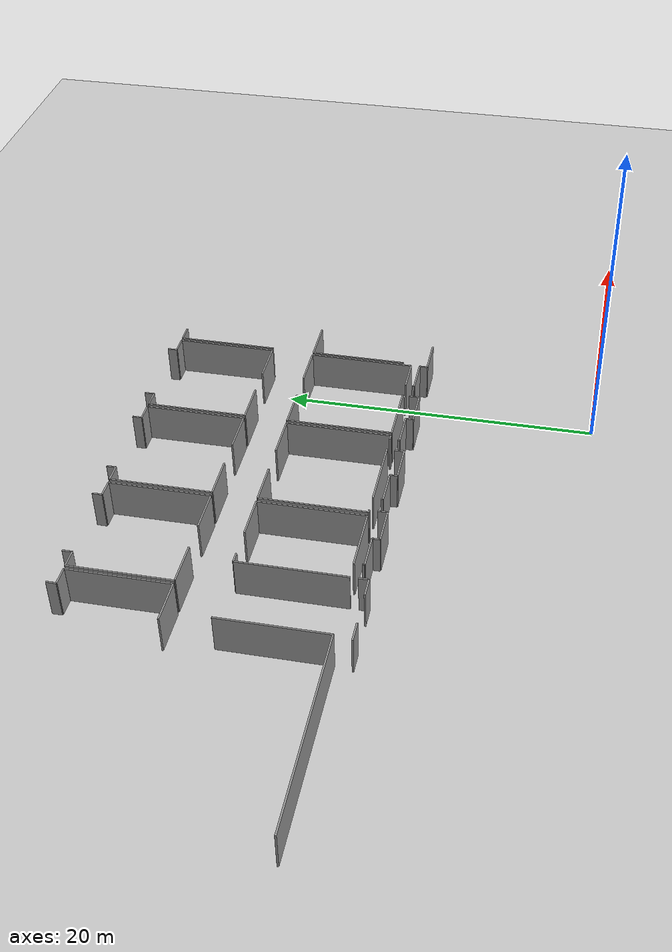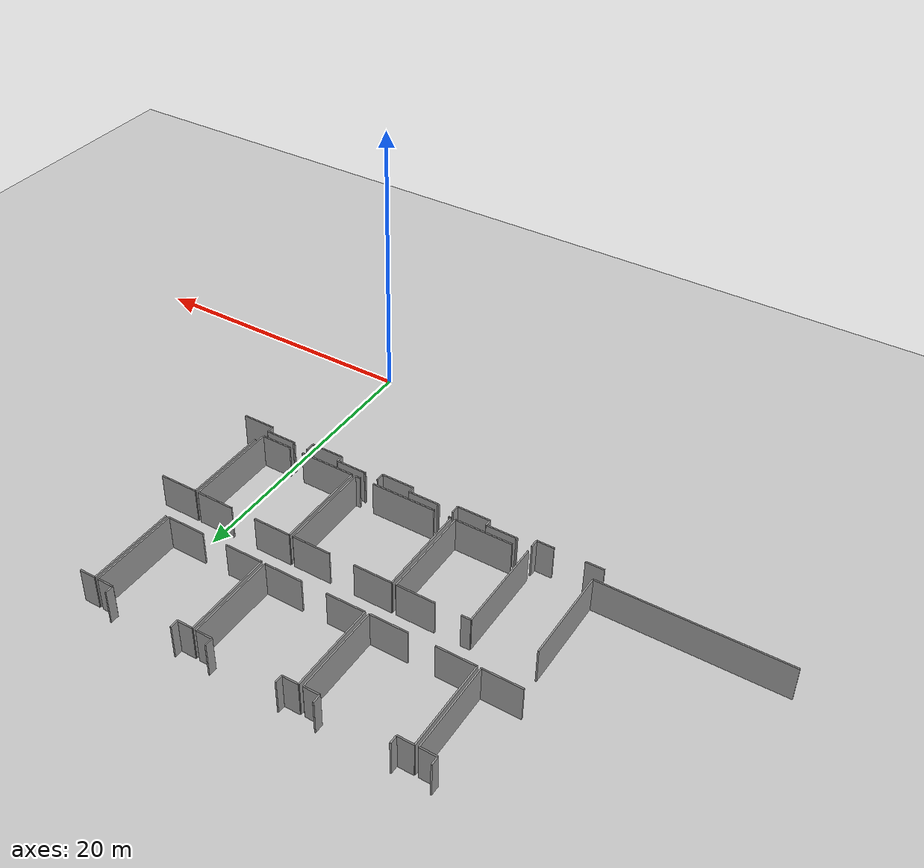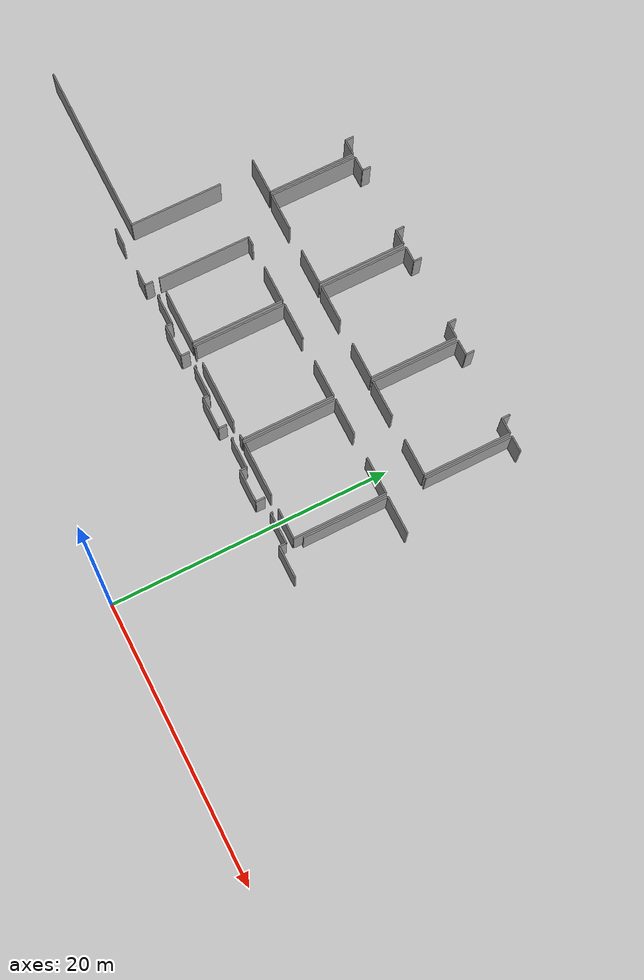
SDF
<sdf version="1.6">
 <world name="default">
  <model name="ground_plane">
   <static>1</static>
   <link name="link">
    <collision name="collision">
     <geometry><plane><normal>0 0 1</normal><size>100 100</size></plane></geometry>
     <surface><friction><ode><mu>100</mu><mu2>50</mu2></ode></friction></surface>
    </collision>
    <visual name="visual">
     <cast_shadows>0</cast_shadows>
     <geometry><plane><normal>0 0 1</normal><size>100 100</size></plane></geometry>
     <material>
      <script><uri>file://media/materials/scripts/gazebo.material</uri><name>Gazebo/Grey</name></script>
     </material>
    </visual>
   </link>
  </model>
  <model name="50045228">
   <static>1</static>
   <link name="Wall_9">
    <collision name="Wall_9_Collision">
     <geometry><box><size>6.64362056389 0.1 2.5</size></box></geometry>
     <pose>3.32181028194 0 1.25 0 0 0</pose>
    </collision>
    <visual name="Wall_9_Visual">
     <pose>3.32181028194 0 1.25 0 0 0</pose>
     <geometry><box><size>6.64362056389 0.1 2.5</size></box></geometry>
     <material>
      <script><uri>file://media/materials/scripts/gazebo.material</uri><name>Gazebo/Grey</name></script>
      <ambient>1 1 1 1</ambient>
     </material>
    </visual>
    <pose>24.4277694967 -9.68443753766 0 0 0 -1.57079632679</pose>
   </link>
   <link name="Wall_10">
    <collision name="Wall_10_Collision">
     <geometry><box><size>12.6084344882 0.1 2.5</size></box></geometry>
     <pose>6.30421724409 0 1.25 0 0 0</pose>
    </collision>
    <visual name="Wall_10_Visual">
     <pose>6.30421724409 0 1.25 0 0 0</pose>
     <geometry><box><size>12.6084344882 0.1 2.5</size></box></geometry>
     <material>
      <script><uri>file://media/materials/scripts/gazebo.material</uri><name>Gazebo/Grey</name></script>
      <ambient>1 1 1 1</ambient>
     </material>
    </visual>
    <pose>24.4277694967 -16.3280581016 0 0 0 -3.13993251164</pose>
   </link>
   <link name="Wall_14">
    <collision name="Wall_14_Collision">
     <geometry><box><size>0.6105737211 0.1 2.5</size></box></geometry>
     <pose>0.30528686055 0 1.25 0 0 0</pose>
    </collision>
    <visual name="Wall_14_Visual">
     <pose>0.30528686055 0 1.25 0 0 0</pose>
     <geometry><box><size>0.6105737211 0.1 2.5</size></box></geometry>
     <material>
      <script><uri>file://media/materials/scripts/gazebo.material</uri><name>Gazebo/Grey</name></script>
      <ambient>1 1 1 1</ambient>
     </material>
    </visual>
    <pose>25.3082997685 -0.00583552694174 0 0 0 -1.57079632679</pose>
   </link>
   <link name="Wall_15">
    <collision name="Wall_15_Collision">
     <geometry><box><size>1.14591988836 0.1 2.5</size></box></geometry>
     <pose>0.572959944182 0 1.25 0 0 0</pose>
    </collision>
    <visual name="Wall_15_Visual">
     <pose>0.572959944182 0 1.25 0 0 0</pose>
     <geometry><box><size>1.14591988836 0.1 2.5</size></box></geometry>
     <material>
      <script><uri>file://media/materials/scripts/gazebo.material</uri><name>Gazebo/Grey</name></script>
      <ambient>1 1 1 1</ambient>
     </material>
    </visual>
    <pose>25.3082997685 -0.616409248042 0 0 0 0.0</pose>
   </link>
   <link name="Wall_16">
    <collision name="Wall_16_Collision">
     <geometry><box><size>6.31162982462 0.1 2.5</size></box></geometry>
     <pose>3.15581491231 0 1.25 0 0 0</pose>
    </collision>
    <visual name="Wall_16_Visual">
     <pose>3.15581491231 0 1.25 0 0 0</pose>
     <geometry><box><size>6.31162982462 0.1 2.5</size></box></geometry>
     <material>
      <script><uri>file://media/materials/scripts/gazebo.material</uri><name>Gazebo/Grey</name></script>
      <ambient>1 1 1 1</ambient>
     </material>
    </visual>
    <pose>26.4542196568 -0.616409248042 0 0 0 -1.57079632679</pose>
   </link>
   <link name="Wall_17">
    <collision name="Wall_17_Collision">
     <geometry><box><size>2.68142462973 0.1 2.5</size></box></geometry>
     <pose>1.34071231486 0 1.25 0 0 0</pose>
    </collision>
    <visual name="Wall_17_Visual">
     <pose>1.34071231486 0 1.25 0 0 0</pose>
     <geometry><box><size>2.68142462973 0.1 2.5</size></box></geometry>
     <material>
      <script><uri>file://media/materials/scripts/gazebo.material</uri><name>Gazebo/Grey</name></script>
      <ambient>1 1 1 1</ambient>
     </material>
    </visual>
    <pose>26.4542196568 -6.92803907266 0 0 0 3.14159265359</pose>
   </link>
   <link name="Wall_27">
    <collision name="Wall_27_Collision">
     <geometry><box><size>6.32951698329 0.1 2.5</size></box></geometry>
     <pose>3.16475849164 0 1.25 0 0 0</pose>
    </collision>
    <visual name="Wall_27_Visual">
     <pose>3.16475849164 0 1.25 0 0 0</pose>
     <geometry><box><size>6.32951698329 0.1 2.5</size></box></geometry>
     <material>
      <script><uri>file://media/materials/scripts/gazebo.material</uri><name>Gazebo/Grey</name></script>
      <ambient>1 1 1 1</ambient>
     </material>
    </visual>
    <pose>26.7048935968 -6.93146427325 0 0 0 1.57079632679</pose>
   </link>
   <link name="Wall_28">
    <collision name="Wall_28_Collision">
     <geometry><box><size>1.12029431353 0.1 2.5</size></box></geometry>
     <pose>0.560147156766 0 1.25 0 0 0</pose>
    </collision>
    <visual name="Wall_28_Visual">
     <pose>0.560147156766 0 1.25 0 0 0</pose>
     <geometry><box><size>1.12029431353 0.1 2.5</size></box></geometry>
     <material>
      <script><uri>file://media/materials/scripts/gazebo.material</uri><name>Gazebo/Grey</name></script>
      <ambient>1 1 1 1</ambient>
     </material>
    </visual>
    <pose>26.7048935968 -0.601947289969 0 0 0 0.0</pose>
   </link>
   <link name="Wall_29">
    <collision name="Wall_29_Collision">
     <geometry><box><size>0.601947289969 0.1 2.5</size></box></geometry>
     <pose>0.300973644984 0 1.25 0 0 0</pose>
    </collision>
    <visual name="Wall_29_Visual">
     <pose>0.300973644984 0 1.25 0 0 0</pose>
     <geometry><box><size>0.601947289969 0.1 2.5</size></box></geometry>
     <material>
      <script><uri>file://media/materials/scripts/gazebo.material</uri><name>Gazebo/Grey</name></script>
      <ambient>1 1 1 1</ambient>
     </material>
    </visual>
    <pose>27.8251879103 -0.601947289969 0 0 0 1.57079632679</pose>
   </link>
   <link name="Wall_30">
    <collision name="Wall_30_Collision">
     <geometry><box><size>0.615521233072 0.1 2.5</size></box></geometry>
     <pose>0.307760616536 0 1.25 0 0 0</pose>
    </collision>
    <visual name="Wall_30_Visual">
     <pose>0.307760616536 0 1.25 0 0 0</pose>
     <geometry><box><size>0.615521233072 0.1 2.5</size></box></geometry>
     <material>
      <script><uri>file://media/materials/scripts/gazebo.material</uri><name>Gazebo/Grey</name></script>
      <ambient>1 1 1 1</ambient>
     </material>
    </visual>
    <pose>32.7468205893 -0.0 0 0 0 -1.57079632679</pose>
   </link>
   <link name="Wall_31">
    <collision name="Wall_31_Collision">
     <geometry><box><size>1.11141416384 0.1 2.5</size></box></geometry>
     <pose>0.555707081919 0 1.25 0 0 0</pose>
    </collision>
    <visual name="Wall_31_Visual">
     <pose>0.555707081919 0 1.25 0 0 0</pose>
     <geometry><box><size>1.11141416384 0.1 2.5</size></box></geometry>
     <material>
      <script><uri>file://media/materials/scripts/gazebo.material</uri><name>Gazebo/Grey</name></script>
      <ambient>1 1 1 1</ambient>
     </material>
    </visual>
    <pose>32.7468205893 -0.615521233072 0 0 0 0.0</pose>
   </link>
   <link name="Wall_32">
    <collision name="Wall_32_Collision">
     <geometry><box><size>6.31886080365 0.1 2.5</size></box></geometry>
     <pose>3.15943040183 0 1.25 0 0 0</pose>
    </collision>
    <visual name="Wall_32_Visual">
     <pose>3.15943040183 0 1.25 0 0 0</pose>
     <geometry><box><size>6.31886080365 0.1 2.5</size></box></geometry>
     <material>
      <script><uri>file://media/materials/scripts/gazebo.material</uri><name>Gazebo/Grey</name></script>
      <ambient>1 1 1 1</ambient>
     </material>
    </visual>
    <pose>33.8582347531 -0.615521233072 0 0 0 -1.57079632679</pose>
   </link>
   <link name="Wall_33">
    <collision name="Wall_33_Collision">
     <geometry><box><size>2.65567219562 0.1 2.5</size></box></geometry>
     <pose>1.32783609781 0 1.25 0 0 0</pose>
    </collision>
    <visual name="Wall_33_Visual">
     <pose>1.32783609781 0 1.25 0 0 0</pose>
     <geometry><box><size>2.65567219562 0.1 2.5</size></box></geometry>
     <material>
      <script><uri>file://media/materials/scripts/gazebo.material</uri><name>Gazebo/Grey</name></script>
      <ambient>1 1 1 1</ambient>
     </material>
    </visual>
    <pose>33.8582347531 -6.93438203673 0 0 0 3.14159265359</pose>
   </link>
   <link name="Wall_34">
    <collision name="Wall_34_Collision">
     <geometry><box><size>2.71085755323 0.1 2.5</size></box></geometry>
     <pose>1.35542877662 0 1.25 0 0 0</pose>
    </collision>
    <visual name="Wall_34_Visual">
     <pose>1.35542877662 0 1.25 0 0 0</pose>
     <geometry><box><size>2.71085755323 0.1 2.5</size></box></geometry>
     <material>
      <script><uri>file://media/materials/scripts/gazebo.material</uri><name>Gazebo/Grey</name></script>
      <ambient>1 1 1 1</ambient>
     </material>
    </visual>
    <pose>29.4157495798 -6.93438203673 0 0 0 3.14051632849</pose>
   </link>
   <link name="Wall_35">
    <collision name="Wall_35_Collision">
     <geometry><box><size>6.3477847198 0.1 2.5</size></box></geometry>
     <pose>3.1738923599 0 1.25 0 0 0</pose>
    </collision>
    <visual name="Wall_35_Visual">
     <pose>3.1738923599 0 1.25 0 0 0</pose>
     <geometry><box><size>6.3477847198 0.1 2.5</size></box></geometry>
     <material>
      <script><uri>file://media/materials/scripts/gazebo.material</uri><name>Gazebo/Grey</name></script>
      <ambient>1 1 1 1</ambient>
     </material>
    </visual>
    <pose>34.1451904475 -6.93146427325 0 0 0 1.57079632679</pose>
   </link>
   <link name="Wall_36">
    <collision name="Wall_36_Collision">
     <geometry><box><size>1.12892074466 0.1 2.5</size></box></geometry>
     <pose>0.564460372332 0 1.25 0 0 0</pose>
    </collision>
    <visual name="Wall_36_Visual">
     <pose>0.564460372332 0 1.25 0 0 0</pose>
     <geometry><box><size>1.12892074466 0.1 2.5</size></box></geometry>
     <material>
      <script><uri>file://media/materials/scripts/gazebo.material</uri><name>Gazebo/Grey</name></script>
      <ambient>1 1 1 1</ambient>
     </material>
    </visual>
    <pose>34.1451904475 -0.583679553455 0 0 0 0.0</pose>
   </link>
   <link name="Wall_37">
    <collision name="Wall_37_Collision">
     <geometry><box><size>0.573530810948 0.1 2.5</size></box></geometry>
     <pose>0.286765405474 0 1.25 0 0 0</pose>
    </collision>
    <visual name="Wall_37_Visual">
     <pose>0.286765405474 0 1.25 0 0 0</pose>
     <geometry><box><size>0.573530810948 0.1 2.5</size></box></geometry>
     <material>
      <script><uri>file://media/materials/scripts/gazebo.material</uri><name>Gazebo/Grey</name></script>
      <ambient>1 1 1 1</ambient>
     </material>
    </visual>
    <pose>35.2741111922 -0.583679553455 0 0 0 1.57079632679</pose>
   </link>
   <link name="Wall_38">
    <collision name="Wall_38_Collision">
     <geometry><box><size>0.585455583394 0.1 2.5</size></box></geometry>
     <pose>0.292727791697 0 1.25 0 0 0</pose>
    </collision>
    <visual name="Wall_38_Visual">
     <pose>0.292727791697 0 1.25 0 0 0</pose>
     <geometry><box><size>0.585455583394 0.1 2.5</size></box></geometry>
     <material>
      <script><uri>file://media/materials/scripts/gazebo.material</uri><name>Gazebo/Grey</name></script>
      <ambient>1 1 1 1</ambient>
     </material>
    </visual>
    <pose>40.1713868891 -0.0101487425074 0 0 0 -1.57079632679</pose>
   </link>
   <link name="Wall_39">
    <collision name="Wall_39_Collision">
     <geometry><box><size>1.14794963687 0.1 2.5</size></box></geometry>
     <pose>0.573974818433 0 1.25 0 0 0</pose>
    </collision>
    <visual name="Wall_39_Visual">
     <pose>0.573974818433 0 1.25 0 0 0</pose>
     <geometry><box><size>1.14794963687 0.1 2.5</size></box></geometry>
     <material>
      <script><uri>file://media/materials/scripts/gazebo.material</uri><name>Gazebo/Grey</name></script>
      <ambient>1 1 1 1</ambient>
     </material>
    </visual>
    <pose>40.1713868891 -0.595604325901 0 0 0 0.0</pose>
   </link>
   <link name="Wall_40">
    <collision name="Wall_40_Collision">
     <geometry><box><size>6.3192413815 0.1 2.5</size></box></geometry>
     <pose>3.15962069075 0 1.25 0 0 0</pose>
    </collision>
    <visual name="Wall_40_Visual">
     <pose>3.15962069075 0 1.25 0 0 0</pose>
     <geometry><box><size>6.3192413815 0.1 2.5</size></box></geometry>
     <material>
      <script><uri>file://media/materials/scripts/gazebo.material</uri><name>Gazebo/Grey</name></script>
      <ambient>1 1 1 1</ambient>
     </material>
    </visual>
    <pose>41.319336526 -0.595604325901 0 0 0 -1.57079632679</pose>
   </link>
   <link name="Wall_41">
    <collision name="Wall_41_Collision">
     <geometry><box><size>2.69487171355 0.1 2.5</size></box></geometry>
     <pose>1.34743585678 0 1.25 0 0 0</pose>
    </collision>
    <visual name="Wall_41_Visual">
     <pose>1.34743585678 0 1.25 0 0 0</pose>
     <geometry><box><size>2.69487171355 0.1 2.5</size></box></geometry>
     <material>
      <script><uri>file://media/materials/scripts/gazebo.material</uri><name>Gazebo/Grey</name></script>
      <ambient>1 1 1 1</ambient>
     </material>
    </visual>
    <pose>41.319336526 -6.9148457074 0 0 0 3.14159265359</pose>
   </link>
   <link name="Wall_42">
    <collision name="Wall_42_Collision">
     <geometry><box><size>2.70266122368 0.1 2.5</size></box></geometry>
     <pose>1.35133061184 0 1.25 0 0 0</pose>
    </collision>
    <visual name="Wall_42_Visual">
     <pose>1.35133061184 0 1.25 0 0 0</pose>
     <geometry><box><size>2.70266122368 0.1 2.5</size></box></geometry>
     <material>
      <script><uri>file://media/materials/scripts/gazebo.material</uri><name>Gazebo/Grey</name></script>
      <ambient>1 1 1 1</ambient>
     </material>
    </visual>
    <pose>36.8478005772 -6.9148457074 0 0 0 -3.1354436511</pose>
   </link>
   <link name="Wall_43">
    <collision name="Wall_43_Collision">
     <geometry><box><size>6.33091243538 0.1 2.5</size></box></geometry>
     <pose>3.16545621769 0 1.25 0 0 0</pose>
    </collision>
    <visual name="Wall_43_Visual">
     <pose>3.16545621769 0 1.25 0 0 0</pose>
     <geometry><box><size>6.33091243538 0.1 2.5</size></box></geometry>
     <material>
      <script><uri>file://media/materials/scripts/gazebo.material</uri><name>Gazebo/Grey</name></script>
      <ambient>1 1 1 1</ambient>
     </material>
    </visual>
    <pose>41.5856141575 -6.93146427325 0 0 0 1.57079632679</pose>
   </link>
   <link name="Wall_44">
    <collision name="Wall_44_Collision">
     <geometry><box><size>1.0926389902 0.1 2.5</size></box></geometry>
     <pose>0.5463194951 0 1.25 0 0 0</pose>
    </collision>
    <visual name="Wall_44_Visual">
     <pose>0.5463194951 0 1.25 0 0 0</pose>
     <geometry><box><size>1.0926389902 0.1 2.5</size></box></geometry>
     <material>
      <script><uri>file://media/materials/scripts/gazebo.material</uri><name>Gazebo/Grey</name></script>
      <ambient>1 1 1 1</ambient>
     </material>
    </visual>
    <pose>41.5856141575 -0.600551837874 0 0 0 0.0</pose>
   </link>
   <link name="Wall_45">
    <collision name="Wall_45_Collision">
     <geometry><box><size>0.600551837874 0.1 2.5</size></box></geometry>
     <pose>0.300275918937 0 1.25 0 0 0</pose>
    </collision>
    <visual name="Wall_45_Visual">
     <pose>0.300275918937 0 1.25 0 0 0</pose>
     <geometry><box><size>0.600551837874 0.1 2.5</size></box></geometry>
     <material>
      <script><uri>file://media/materials/scripts/gazebo.material</uri><name>Gazebo/Grey</name></script>
      <ambient>1 1 1 1</ambient>
     </material>
    </visual>
    <pose>42.6782531477 -0.600551837874 0 0 0 1.57079632679</pose>
   </link>
   <link name="Wall_46">
    <collision name="Wall_46_Collision">
     <geometry><box><size>0.600551837874 0.1 2.5</size></box></geometry>
     <pose>0.300275918937 0 1.25 0 0 0</pose>
    </collision>
    <visual name="Wall_46_Visual">
     <pose>0.300275918937 0 1.25 0 0 0</pose>
     <geometry><box><size>0.600551837874 0.1 2.5</size></box></geometry>
     <material>
      <script><uri>file://media/materials/scripts/gazebo.material</uri><name>Gazebo/Grey</name></script>
      <ambient>1 1 1 1</ambient>
     </material>
    </visual>
    <pose>47.6162506739 -0.0 0 0 0 -1.57079632679</pose>
   </link>
   <link name="Wall_47">
    <collision name="Wall_47_Collision">
     <geometry><box><size>1.13437569376 0.1 2.5</size></box></geometry>
     <pose>0.567187846881 0 1.25 0 0 0</pose>
    </collision>
    <visual name="Wall_47_Visual">
     <pose>0.567187846881 0 1.25 0 0 0</pose>
     <geometry><box><size>1.13437569376 0.1 2.5</size></box></geometry>
     <material>
      <script><uri>file://media/materials/scripts/gazebo.material</uri><name>Gazebo/Grey</name></script>
      <ambient>1 1 1 1</ambient>
     </material>
    </visual>
    <pose>47.6162506739 -0.600551837874 0 0 0 0.0</pose>
   </link>
   <link name="Wall_48">
    <collision name="Wall_48_Collision">
     <geometry><box><size>6.31429386953 0.1 2.5</size></box></geometry>
     <pose>3.15714693476 0 1.25 0 0 0</pose>
    </collision>
    <visual name="Wall_48_Visual">
     <pose>3.15714693476 0 1.25 0 0 0</pose>
     <geometry><box><size>6.31429386953 0.1 2.5</size></box></geometry>
     <material>
      <script><uri>file://media/materials/scripts/gazebo.material</uri><name>Gazebo/Grey</name></script>
      <ambient>1 1 1 1</ambient>
     </material>
    </visual>
    <pose>48.7506263677 -0.600551837874 0 0 0 -1.57079632679</pose>
   </link>
   <link name="Wall_49">
    <collision name="Wall_49_Collision">
     <geometry><box><size>2.69411055786 0.1 2.5</size></box></geometry>
     <pose>1.34705527893 0 1.25 0 0 0</pose>
    </collision>
    <visual name="Wall_49_Visual">
     <pose>1.34705527893 0 1.25 0 0 0</pose>
     <geometry><box><size>2.69411055786 0.1 2.5</size></box></geometry>
     <material>
      <script><uri>file://media/materials/scripts/gazebo.material</uri><name>Gazebo/Grey</name></script>
      <ambient>1 1 1 1</ambient>
     </material>
    </visual>
    <pose>48.7506263677 -6.9148457074 0 0 0 3.14159265359</pose>
   </link>
   <link name="Wall_50">
    <collision name="Wall_50_Collision">
     <geometry><box><size>2.6899755365 0.1 2.5</size></box></geometry>
     <pose>1.34498776825 0 1.25 0 0 0</pose>
    </collision>
    <visual name="Wall_50_Visual">
     <pose>1.34498776825 0 1.25 0 0 0</pose>
     <geometry><box><size>2.6899755365 0.1 2.5</size></box></geometry>
     <material>
      <script><uri>file://media/materials/scripts/gazebo.material</uri><name>Gazebo/Grey</name></script>
      <ambient>1 1 1 1</ambient>
     </material>
    </visual>
    <pose>44.2755383591 -6.9148457074 0 0 0 -3.13541465258</pose>
   </link>
   <link name="Wall_51">
    <collision name="Wall_51_Collision">
     <geometry><box><size>6.33928514795 0.1 2.5</size></box></geometry>
     <pose>3.16964257397 0 1.25 0 0 0</pose>
    </collision>
    <visual name="Wall_51_Visual">
     <pose>3.16964257397 0 1.25 0 0 0</pose>
     <geometry><box><size>6.33928514795 0.1 2.5</size></box></geometry>
     <material>
      <script><uri>file://media/materials/scripts/gazebo.material</uri><name>Gazebo/Grey</name></script>
      <ambient>1 1 1 1</ambient>
     </material>
    </visual>
    <pose>48.9900098316 -6.92677047985 0 0 0 1.57079632679</pose>
   </link>
   <link name="Wall_52">
    <collision name="Wall_52_Collision">
     <geometry><box><size>1.13881576861 0.1 2.5</size></box></geometry>
     <pose>0.569407884304 0 1.25 0 0 0</pose>
    </collision>
    <visual name="Wall_52_Visual">
     <pose>0.569407884304 0 1.25 0 0 0</pose>
     <geometry><box><size>1.13881576861 0.1 2.5</size></box></geometry>
     <material>
      <script><uri>file://media/materials/scripts/gazebo.material</uri><name>Gazebo/Grey</name></script>
      <ambient>1 1 1 1</ambient>
     </material>
    </visual>
    <pose>48.9900098316 -0.587485331896 0 0 0 0.0</pose>
   </link>
   <link name="Wall_122">
    <collision name="Wall_122_Collision">
     <geometry><box><size>6.0982525134 0.1 2.5</size></box></geometry>
     <pose>3.0491262567 0 1.25 0 0 0</pose>
    </collision>
    <visual name="Wall_122_Visual">
     <pose>3.0491262567 0 1.25 0 0 0</pose>
     <geometry><box><size>6.0982525134 0.1 2.5</size></box></geometry>
     <material>
      <script><uri>file://media/materials/scripts/gazebo.material</uri><name>Gazebo/Grey</name></script>
      <ambient>1 1 1 1</ambient>
     </material>
    </visual>
    <pose>48.9803685262 -15.7825631918 0 0 0 1.57079632679</pose>
   </link>
   <link name="Wall_123">
    <collision name="Wall_123_Collision">
     <geometry><box><size>2.71415432432 0.1 2.5</size></box></geometry>
     <pose>1.35707716216 0 1.25 0 0 0</pose>
    </collision>
    <visual name="Wall_123_Visual">
     <pose>1.35707716216 0 1.25 0 0 0</pose>
     <geometry><box><size>2.71415432432 0.1 2.5</size></box></geometry>
     <material>
      <script><uri>file://media/materials/scripts/gazebo.material</uri><name>Gazebo/Grey</name></script>
      <ambient>1 1 1 1</ambient>
     </material>
    </visual>
    <pose>48.9803685262 -9.68431067838 0 0 0 0.0</pose>
   </link>
   <link name="Wall_127">
    <collision name="Wall_127_Collision">
     <geometry><box><size>6.6707684501 0.1 2.5</size></box></geometry>
     <pose>3.33538422505 0 1.25 0 0 0</pose>
    </collision>
    <visual name="Wall_127_Visual">
     <pose>3.33538422505 0 1.25 0 0 0</pose>
     <geometry><box><size>6.6707684501 0.1 2.5</size></box></geometry>
     <material>
      <script><uri>file://media/materials/scripts/gazebo.material</uri><name>Gazebo/Grey</name></script>
      <ambient>1 1 1 1</ambient>
     </material>
    </visual>
    <pose>41.5939868701 -16.3487361644 0 0 0 1.57079632679</pose>
   </link>
   <link name="Wall_128">
    <collision name="Wall_128_Collision">
     <geometry><box><size>2.65808252196 0.1 2.5</size></box></geometry>
     <pose>1.32904126098 0 1.25 0 0 0</pose>
    </collision>
    <visual name="Wall_128_Visual">
     <pose>1.32904126098 0 1.25 0 0 0</pose>
     <geometry><box><size>2.65808252196 0.1 2.5</size></box></geometry>
     <material>
      <script><uri>file://media/materials/scripts/gazebo.material</uri><name>Gazebo/Grey</name></script>
      <ambient>1 1 1 1</ambient>
     </material>
    </visual>
    <pose>41.5939868701 -9.67796771431 0 0 0 0.0</pose>
   </link>
   <link name="Wall_129">
    <collision name="Wall_129_Collision">
     <geometry><box><size>2.69157337224 0.1 2.5</size></box></geometry>
     <pose>1.34578668612 0 1.25 0 0 0</pose>
    </collision>
    <visual name="Wall_129_Visual">
     <pose>1.34578668612 0 1.25 0 0 0</pose>
     <geometry><box><size>2.69157337224 0.1 2.5</size></box></geometry>
     <material>
      <script><uri>file://media/materials/scripts/gazebo.material</uri><name>Gazebo/Grey</name></script>
      <ambient>1 1 1 1</ambient>
     </material>
    </visual>
    <pose>46.0515682979 -9.67796771431 0 0 0 0.0</pose>
   </link>
   <link name="Wall_130">
    <collision name="Wall_130_Collision">
     <geometry><box><size>6.68040975548 0.1 2.5</size></box></geometry>
     <pose>3.34020487774 0 1.25 0 0 0</pose>
    </collision>
    <visual name="Wall_130_Visual">
     <pose>3.34020487774 0 1.25 0 0 0</pose>
     <geometry><box><size>6.68040975548 0.1 2.5</size></box></geometry>
     <material>
      <script><uri>file://media/materials/scripts/gazebo.material</uri><name>Gazebo/Grey</name></script>
      <ambient>1 1 1 1</ambient>
     </material>
    </visual>
    <pose>48.7431416701 -9.67796771431 0 0 0 -1.57079632679</pose>
   </link>
   <link name="Wall_131">
    <collision name="Wall_131_Collision">
     <geometry><box><size>2.17309948939 0.1 2.5</size></box></geometry>
     <pose>1.0865497447 0 1.25 0 0 0</pose>
    </collision>
    <visual name="Wall_131_Visual">
     <pose>1.0865497447 0 1.25 0 0 0</pose>
     <geometry><box><size>2.17309948939 0.1 2.5</size></box></geometry>
     <material>
      <script><uri>file://media/materials/scripts/gazebo.material</uri><name>Gazebo/Grey</name></script>
      <ambient>1 1 1 1</ambient>
     </material>
    </visual>
    <pose>48.7431416701 -16.3583774698 0 0 0 3.14159265359</pose>
   </link>
   <link name="Wall_132">
    <collision name="Wall_132_Collision">
     <geometry><box><size>3.9453354301 0.1 2.5</size></box></geometry>
     <pose>1.97266771505 0 1.25 0 0 0</pose>
    </collision>
    <visual name="Wall_132_Visual">
     <pose>1.97266771505 0 1.25 0 0 0</pose>
     <geometry><box><size>3.9453354301 0.1 2.5</size></box></geometry>
     <material>
      <script><uri>file://media/materials/scripts/gazebo.material</uri><name>Gazebo/Grey</name></script>
      <ambient>1 1 1 1</ambient>
     </material>
    </visual>
    <pose>45.5393105198 -16.3583774698 0 0 0 3.13914892855</pose>
   </link>
   <link name="Wall_133">
    <collision name="Wall_133_Collision">
     <geometry><box><size>6.63956106689 0.1 2.5</size></box></geometry>
     <pose>3.31978053344 0 1.25 0 0 0</pose>
    </collision>
    <visual name="Wall_133_Visual">
     <pose>3.31978053344 0 1.25 0 0 0</pose>
     <geometry><box><size>6.63956106689 0.1 2.5</size></box></geometry>
     <material>
      <script><uri>file://media/materials/scripts/gazebo.material</uri><name>Gazebo/Grey</name></script>
      <ambient>1 1 1 1</ambient>
     </material>
    </visual>
    <pose>34.1498842409 -16.3319907393 0 0 0 1.57079632679</pose>
   </link>
   <link name="Wall_134">
    <collision name="Wall_134_Collision">
     <geometry><box><size>2.68954362374 0.1 2.5</size></box></geometry>
     <pose>1.34477181187 0 1.25 0 0 0</pose>
    </collision>
    <visual name="Wall_134_Visual">
     <pose>1.34477181187 0 1.25 0 0 0</pose>
     <geometry><box><size>2.68954362374 0.1 2.5</size></box></geometry>
     <material>
      <script><uri>file://media/materials/scripts/gazebo.material</uri><name>Gazebo/Grey</name></script>
      <ambient>1 1 1 1</ambient>
     </material>
    </visual>
    <pose>34.1498842409 -9.69242967239 0 0 0 0.0</pose>
   </link>
   <link name="Wall_135">
    <collision name="Wall_135_Collision">
     <geometry><box><size>2.72810884526 0.1 2.5</size></box></geometry>
     <pose>1.36405442263 0 1.25 0 0 0</pose>
    </collision>
    <visual name="Wall_135_Visual">
     <pose>1.36405442263 0 1.25 0 0 0</pose>
     <geometry><box><size>2.72810884526 0.1 2.5</size></box></geometry>
     <material>
      <script><uri>file://media/materials/scripts/gazebo.material</uri><name>Gazebo/Grey</name></script>
      <ambient>1 1 1 1</ambient>
     </material>
    </visual>
    <pose>38.602645016 -9.69242967239 0 0 0 0.0</pose>
   </link>
   <link name="Wall_136">
    <collision name="Wall_136_Collision">
     <geometry><box><size>6.65630649202 0.1 2.5</size></box></geometry>
     <pose>3.32815324601 0 1.25 0 0 0</pose>
    </collision>
    <visual name="Wall_136_Visual">
     <pose>3.32815324601 0 1.25 0 0 0</pose>
     <geometry><box><size>6.65630649202 0.1 2.5</size></box></geometry>
     <material>
      <script><uri>file://media/materials/scripts/gazebo.material</uri><name>Gazebo/Grey</name></script>
      <ambient>1 1 1 1</ambient>
     </material>
    </visual>
    <pose>41.3307538613 -9.69242967239 0 0 0 -1.57079632679</pose>
   </link>
   <link name="Wall_137">
    <collision name="Wall_137_Collision">
     <geometry><box><size>0.354064254226 0.1 2.5</size></box></geometry>
     <pose>0.177032127113 0 1.25 0 0 0</pose>
    </collision>
    <visual name="Wall_137_Visual">
     <pose>0.177032127113 0 1.25 0 0 0</pose>
     <geometry><box><size>0.354064254226 0.1 2.5</size></box></geometry>
     <material>
      <script><uri>file://media/materials/scripts/gazebo.material</uri><name>Gazebo/Grey</name></script>
      <ambient>1 1 1 1</ambient>
     </material>
    </visual>
    <pose>41.3307538613 -16.3487361644 0 0 0 3.14159265359</pose>
   </link>
   <link name="Wall_138">
    <collision name="Wall_138_Collision">
     <geometry><box><size>4.56262091275 0.1 2.5</size></box></geometry>
     <pose>2.28131045638 0 1.25 0 0 0</pose>
    </collision>
    <visual name="Wall_138_Visual">
     <pose>2.28131045638 0 1.25 0 0 0</pose>
     <geometry><box><size>4.56262091275 0.1 2.5</size></box></geometry>
     <material>
      <script><uri>file://media/materials/scripts/gazebo.material</uri><name>Gazebo/Grey</name></script>
      <ambient>1 1 1 1</ambient>
     </material>
    </visual>
    <pose>39.9840157306 -16.3487361644 0 0 0 3.14159265359</pose>
   </link>
   <link name="Wall_139">
    <collision name="Wall_139_Collision">
     <geometry><box><size>0.19620603713 0.1 2.5</size></box></geometry>
     <pose>0.0981030185651 0 1.25 0 0 0</pose>
    </collision>
    <visual name="Wall_139_Visual">
     <pose>0.0981030185651 0 1.25 0 0 0</pose>
     <geometry><box><size>0.19620603713 0.1 2.5</size></box></geometry>
     <material>
      <script><uri>file://media/materials/scripts/gazebo.material</uri><name>Gazebo/Grey</name></script>
      <ambient>1 1 1 1</ambient>
     </material>
    </visual>
    <pose>34.3453743935 -16.3487361644 0 0 0 3.05614257701</pose>
   </link>
   <link name="Wall_140">
    <collision name="Wall_140_Collision">
     <geometry><box><size>6.6523738543 0.1 2.5</size></box></geometry>
     <pose>3.32618692715 0 1.25 0 0 0</pose>
    </collision>
    <visual name="Wall_140_Visual">
     <pose>3.32618692715 0 1.25 0 0 0</pose>
     <geometry><box><size>6.6523738543 0.1 2.5</size></box></geometry>
     <material>
      <script><uri>file://media/materials/scripts/gazebo.material</uri><name>Gazebo/Grey</name></script>
      <ambient>1 1 1 1</ambient>
     </material>
    </visual>
    <pose>28.7607751102 -16.3487361644 0 0 0 1.57079632679</pose>
   </link>
   <link name="Wall_141">
    <collision name="Wall_141_Collision">
     <geometry><box><size>0.647362912689 0.1 2.5</size></box></geometry>
     <pose>0.323681456345 0 1.25 0 0 0</pose>
    </collision>
    <visual name="Wall_141_Visual">
     <pose>0.323681456345 0 1.25 0 0 0</pose>
     <geometry><box><size>0.647362912689 0.1 2.5</size></box></geometry>
     <material>
      <script><uri>file://media/materials/scripts/gazebo.material</uri><name>Gazebo/Grey</name></script>
      <ambient>1 1 1 1</ambient>
     </material>
    </visual>
    <pose>28.7607751102 -9.69636231011 0 0 0 0.0</pose>
   </link>
   <link name="Wall_142">
    <collision name="Wall_142_Collision">
     <geometry><box><size>2.6897973423 0.1 2.5</size></box></geometry>
     <pose>1.34489867115 0 1.25 0 0 0</pose>
    </collision>
    <visual name="Wall_142_Visual">
     <pose>1.34489867115 0 1.25 0 0 0</pose>
     <geometry><box><size>2.6897973423 0.1 2.5</size></box></geometry>
     <material>
      <script><uri>file://media/materials/scripts/gazebo.material</uri><name>Gazebo/Grey</name></script>
      <ambient>1 1 1 1</ambient>
     </material>
    </visual>
    <pose>31.1614601503 -9.69636231011 0 0 0 0.0</pose>
   </link>
   <link name="Wall_143">
    <collision name="Wall_143_Collision">
     <geometry><box><size>6.63562842916 0.1 2.5</size></box></geometry>
     <pose>3.31781421458 0 1.25 0 0 0</pose>
    </collision>
    <visual name="Wall_143_Visual">
     <pose>3.31781421458 0 1.25 0 0 0</pose>
     <geometry><box><size>6.63562842916 0.1 2.5</size></box></geometry>
     <material>
      <script><uri>file://media/materials/scripts/gazebo.material</uri><name>Gazebo/Grey</name></script>
      <ambient>1 1 1 1</ambient>
     </material>
    </visual>
    <pose>33.8512574926 -9.69636231011 0 0 0 -1.57079632679</pose>
   </link>
   <link name="Wall_144">
    <collision name="Wall_144_Collision">
     <geometry><box><size>4.00469379341 0.1 2.5</size></box></geometry>
     <pose>2.0023468967 0 1.25 0 0 0</pose>
    </collision>
    <visual name="Wall_144_Visual">
     <pose>2.0023468967 0 1.25 0 0 0</pose>
     <geometry><box><size>4.00469379341 0.1 2.5</size></box></geometry>
     <material>
      <script><uri>file://media/materials/scripts/gazebo.material</uri><name>Gazebo/Grey</name></script>
      <ambient>1 1 1 1</ambient>
     </material>
    </visual>
    <pose>33.8512574926 -16.3319907393 0 0 0 3.14159265359</pose>
   </link>
   <link name="Wall_147">
    <collision name="Wall_147_Collision">
     <geometry><box><size>1.27404776252 0.1 2.5</size></box></geometry>
     <pose>0.63702388126 0 1.25 0 0 0</pose>
    </collision>
    <visual name="Wall_147_Visual">
     <pose>0.63702388126 0 1.25 0 0 0</pose>
     <geometry><box><size>1.27404776252 0.1 2.5</size></box></geometry>
     <material>
      <script><uri>file://media/materials/scripts/gazebo.material</uri><name>Gazebo/Grey</name></script>
      <ambient>1 1 1 1</ambient>
     </material>
    </visual>
    <pose>24.1986616346 -17.4120706606 0 0 0 0.0</pose>
   </link>
   <link name="Wall_148">
    <collision name="Wall_148_Collision">
     <geometry><box><size>1.20516317275 0.1 2.5</size></box></geometry>
     <pose>0.602581586375 0 1.25 0 0 0</pose>
    </collision>
    <visual name="Wall_148_Visual">
     <pose>0.602581586375 0 1.25 0 0 0</pose>
     <geometry><box><size>1.20516317275 0.1 2.5</size></box></geometry>
     <material>
      <script><uri>file://media/materials/scripts/gazebo.material</uri><name>Gazebo/Grey</name></script>
      <ambient>1 1 1 1</ambient>
     </material>
    </visual>
    <pose>27.5665218357 -17.4120706606 0 0 0 0.0</pose>
   </link>
   <link name="Wall_149">
    <collision name="Wall_149_Collision">
     <geometry><box><size>0.590403095366 0.1 2.5</size></box></geometry>
     <pose>0.295201547683 0 1.25 0 0 0</pose>
    </collision>
    <visual name="Wall_149_Visual">
     <pose>0.295201547683 0 1.25 0 0 0</pose>
     <geometry><box><size>0.590403095366 0.1 2.5</size></box></geometry>
     <material>
      <script><uri>file://media/materials/scripts/gazebo.material</uri><name>Gazebo/Grey</name></script>
      <ambient>1 1 1 1</ambient>
     </material>
    </visual>
    <pose>28.7716850084 -17.4120706606 0 0 0 1.57079632679</pose>
   </link>
   <link name="Wall_150">
    <collision name="Wall_150_Collision">
     <geometry><box><size>0.132441089721 0.1 2.5</size></box></geometry>
     <pose>0.0662205448606 0 1.25 0 0 0</pose>
    </collision>
    <visual name="Wall_150_Visual">
     <pose>0.0662205448606 0 1.25 0 0 0</pose>
     <geometry><box><size>0.132441089721 0.1 2.5</size></box></geometry>
     <material>
      <script><uri>file://media/materials/scripts/gazebo.material</uri><name>Gazebo/Grey</name></script>
      <ambient>1 1 1 1</ambient>
     </material>
    </visual>
    <pose>29.8466905585 -16.8216675653 0 0 0 -1.57079632679</pose>
   </link>
   <link name="Wall_151">
    <collision name="Wall_151_Collision">
     <geometry><box><size>2.17309948939 0.1 2.5</size></box></geometry>
     <pose>1.0865497447 0 1.25 0 0 0</pose>
    </collision>
    <visual name="Wall_151_Visual">
     <pose>1.0865497447 0 1.25 0 0 0</pose>
     <geometry><box><size>2.17309948939 0.1 2.5</size></box></geometry>
     <material>
      <script><uri>file://media/materials/scripts/gazebo.material</uri><name>Gazebo/Grey</name></script>
      <ambient>1 1 1 1</ambient>
     </material>
    </visual>
    <pose>29.8466905585 -16.954108655 0 0 0 0.0</pose>
   </link>
   <link name="Wall_152">
    <collision name="Wall_152_Collision">
     <geometry><box><size>0.474326852938 0.1 2.5</size></box></geometry>
     <pose>0.237163426469 0 1.25 0 0 0</pose>
    </collision>
    <visual name="Wall_152_Visual">
     <pose>0.237163426469 0 1.25 0 0 0</pose>
     <geometry><box><size>0.474326852938 0.1 2.5</size></box></geometry>
     <material>
      <script><uri>file://media/materials/scripts/gazebo.material</uri><name>Gazebo/Grey</name></script>
      <ambient>1 1 1 1</ambient>
     </material>
    </visual>
    <pose>32.0197900479 -16.954108655 0 0 0 -1.57079632679</pose>
   </link>
   <link name="Wall_153">
    <collision name="Wall_153_Collision">
     <geometry><box><size>2.33865085154 0.1 2.5</size></box></geometry>
     <pose>1.16932542577 0 1.25 0 0 0</pose>
    </collision>
    <visual name="Wall_153_Visual">
     <pose>1.16932542577 0 1.25 0 0 0</pose>
     <geometry><box><size>2.33865085154 0.1 2.5</size></box></geometry>
     <material>
      <script><uri>file://media/materials/scripts/gazebo.material</uri><name>Gazebo/Grey</name></script>
      <ambient>1 1 1 1</ambient>
     </material>
    </visual>
    <pose>32.0197900479 -17.4284355079 0 0 0 0.0</pose>
   </link>
   <link name="Wall_154">
    <collision name="Wall_154_Collision">
     <geometry><box><size>0.60676794266 0.1 2.5</size></box></geometry>
     <pose>0.30338397133 0 1.25 0 0 0</pose>
    </collision>
    <visual name="Wall_154_Visual">
     <pose>0.30338397133 0 1.25 0 0 0</pose>
     <geometry><box><size>0.60676794266 0.1 2.5</size></box></geometry>
     <material>
      <script><uri>file://media/materials/scripts/gazebo.material</uri><name>Gazebo/Grey</name></script>
      <ambient>1 1 1 1</ambient>
     </material>
    </visual>
    <pose>34.3584408994 -17.4284355079 0 0 0 1.57079632679</pose>
   </link>
   <link name="Wall_155">
    <collision name="Wall_155_Collision">
     <geometry><box><size>0.132441089721 0.1 2.5</size></box></geometry>
     <pose>0.0662205448606 0 1.25 0 0 0</pose>
    </collision>
    <visual name="Wall_155_Visual">
     <pose>0.0662205448606 0 1.25 0 0 0</pose>
     <geometry><box><size>0.132441089721 0.1 2.5</size></box></geometry>
     <material>
      <script><uri>file://media/materials/scripts/gazebo.material</uri><name>Gazebo/Grey</name></script>
      <ambient>1 1 1 1</ambient>
     </material>
    </visual>
    <pose>35.4284989376 -16.8216675653 0 0 0 -1.57079632679</pose>
   </link>
   <link name="Wall_156">
    <collision name="Wall_156_Collision">
     <geometry><box><size>2.20620976182 0.1 2.5</size></box></geometry>
     <pose>1.10310488091 0 1.25 0 0 0</pose>
    </collision>
    <visual name="Wall_156_Visual">
     <pose>1.10310488091 0 1.25 0 0 0</pose>
     <geometry><box><size>2.20620976182 0.1 2.5</size></box></geometry>
     <material>
      <script><uri>file://media/materials/scripts/gazebo.material</uri><name>Gazebo/Grey</name></script>
      <ambient>1 1 1 1</ambient>
     </material>
    </visual>
    <pose>35.4284989376 -16.954108655 0 0 0 0.0</pose>
   </link>
   <link name="Wall_157">
    <collision name="Wall_157_Collision">
     <geometry><box><size>0.463290095462 0.1 2.5</size></box></geometry>
     <pose>0.231645047731 0 1.25 0 0 0</pose>
    </collision>
    <visual name="Wall_157_Visual">
     <pose>0.231645047731 0 1.25 0 0 0</pose>
     <geometry><box><size>0.463290095462 0.1 2.5</size></box></geometry>
     <material>
      <script><uri>file://media/materials/scripts/gazebo.material</uri><name>Gazebo/Grey</name></script>
      <ambient>1 1 1 1</ambient>
     </material>
    </visual>
    <pose>37.6347086994 -16.954108655 0 0 0 -1.57079632679</pose>
   </link>
   <link name="Wall_158">
    <collision name="Wall_158_Collision">
     <geometry><box><size>2.33865085154 0.1 2.5</size></box></geometry>
     <pose>1.16932542577 0 1.25 0 0 0</pose>
    </collision>
    <visual name="Wall_158_Visual">
     <pose>1.16932542577 0 1.25 0 0 0</pose>
     <geometry><box><size>2.33865085154 0.1 2.5</size></box></geometry>
     <material>
      <script><uri>file://media/materials/scripts/gazebo.material</uri><name>Gazebo/Grey</name></script>
      <ambient>1 1 1 1</ambient>
     </material>
    </visual>
    <pose>37.6347086994 -17.4173987504 0 0 0 0.0</pose>
   </link>
   <link name="Wall_159">
    <collision name="Wall_159_Collision">
     <geometry><box><size>0.584694427706 0.1 2.5</size></box></geometry>
     <pose>0.292347213853 0 1.25 0 0 0</pose>
    </collision>
    <visual name="Wall_159_Visual">
     <pose>0.292347213853 0 1.25 0 0 0</pose>
     <geometry><box><size>0.584694427706 0.1 2.5</size></box></geometry>
     <material>
      <script><uri>file://media/materials/scripts/gazebo.material</uri><name>Gazebo/Grey</name></script>
      <ambient>1 1 1 1</ambient>
     </material>
    </visual>
    <pose>39.9733595509 -17.4173987504 0 0 0 1.57079632679</pose>
   </link>
   <link name="Wall_160">
    <collision name="Wall_160_Collision">
     <geometry><box><size>0.121404332244 0.1 2.5</size></box></geometry>
     <pose>0.0607021661222 0 1.25 0 0 0</pose>
    </collision>
    <visual name="Wall_160_Visual">
     <pose>0.0607021661222 0 1.25 0 0 0</pose>
     <geometry><box><size>0.121404332244 0.1 2.5</size></box></geometry>
     <material>
      <script><uri>file://media/materials/scripts/gazebo.material</uri><name>Gazebo/Grey</name></script>
      <ambient>1 1 1 1</ambient>
     </material>
    </visual>
    <pose>40.9661602867 -16.8327043227 0 0 0 -1.57079632679</pose>
   </link>
   <link name="Wall_161">
    <collision name="Wall_161_Collision">
     <geometry><box><size>2.19517300434 0.1 2.5</size></box></geometry>
     <pose>1.09758650217 0 1.25 0 0 0</pose>
    </collision>
    <visual name="Wall_161_Visual">
     <pose>1.09758650217 0 1.25 0 0 0</pose>
     <geometry><box><size>2.19517300434 0.1 2.5</size></box></geometry>
     <material>
      <script><uri>file://media/materials/scripts/gazebo.material</uri><name>Gazebo/Grey</name></script>
      <ambient>1 1 1 1</ambient>
     </material>
    </visual>
    <pose>40.9661602867 -16.954108655 0 0 0 0.0</pose>
   </link>
   <link name="Wall_162">
    <collision name="Wall_162_Collision">
     <geometry><box><size>0.485363610415 0.1 2.5</size></box></geometry>
     <pose>0.242681805208 0 1.25 0 0 0</pose>
    </collision>
    <visual name="Wall_162_Visual">
     <pose>0.242681805208 0 1.25 0 0 0</pose>
     <geometry><box><size>0.485363610415 0.1 2.5</size></box></geometry>
     <material>
      <script><uri>file://media/materials/scripts/gazebo.material</uri><name>Gazebo/Grey</name></script>
      <ambient>1 1 1 1</ambient>
     </material>
    </visual>
    <pose>43.161333291 -16.954108655 0 0 0 -1.57079632679</pose>
   </link>
   <link name="Wall_163">
    <collision name="Wall_163_Collision">
     <geometry><box><size>2.32761409407 0.1 2.5</size></box></geometry>
     <pose>1.16380704703 0 1.25 0 0 0</pose>
    </collision>
    <visual name="Wall_163_Visual">
     <pose>1.16380704703 0 1.25 0 0 0</pose>
     <geometry><box><size>2.32761409407 0.1 2.5</size></box></geometry>
     <material>
      <script><uri>file://media/materials/scripts/gazebo.material</uri><name>Gazebo/Grey</name></script>
      <ambient>1 1 1 1</ambient>
     </material>
    </visual>
    <pose>43.161333291 -17.4394722654 0 0 0 0.0</pose>
   </link>
   <link name="Wall_164">
    <collision name="Wall_164_Collision">
     <geometry><box><size>0.650914972567 0.1 2.5</size></box></geometry>
     <pose>0.325457486283 0 1.25 0 0 0</pose>
    </collision>
    <visual name="Wall_164_Visual">
     <pose>0.325457486283 0 1.25 0 0 0</pose>
     <geometry><box><size>0.650914972567 0.1 2.5</size></box></geometry>
     <material>
      <script><uri>file://media/materials/scripts/gazebo.material</uri><name>Gazebo/Grey</name></script>
      <ambient>1 1 1 1</ambient>
     </material>
    </visual>
    <pose>45.4889473851 -17.4394722654 0 0 0 1.57079632679</pose>
   </link>
   <link name="Wall_165">
    <collision name="Wall_165_Collision">
     <geometry><box><size>0.132441089721 0.1 2.5</size></box></geometry>
     <pose>0.0662205448606 0 1.25 0 0 0</pose>
    </collision>
    <visual name="Wall_165_Visual">
     <pose>0.0662205448606 0 1.25 0 0 0</pose>
     <geometry><box><size>0.132441089721 0.1 2.5</size></box></geometry>
     <material>
      <script><uri>file://media/materials/scripts/gazebo.material</uri><name>Gazebo/Grey</name></script>
      <ambient>1 1 1 1</ambient>
     </material>
    </visual>
    <pose>46.5921156957 -16.7885572928 0 0 0 -1.57079632679</pose>
   </link>
   <link name="Wall_166">
    <collision name="Wall_166_Collision">
     <geometry><box><size>2.20620976182 0.1 2.5</size></box></geometry>
     <pose>1.10310488091 0 1.25 0 0 0</pose>
    </collision>
    <visual name="Wall_166_Visual">
     <pose>1.10310488091 0 1.25 0 0 0</pose>
     <geometry><box><size>2.20620976182 0.1 2.5</size></box></geometry>
     <material>
      <script><uri>file://media/materials/scripts/gazebo.material</uri><name>Gazebo/Grey</name></script>
      <ambient>1 1 1 1</ambient>
     </material>
    </visual>
    <pose>46.5921156957 -16.9209983825 0 0 0 0.0</pose>
   </link>
   <link name="Wall_167">
    <collision name="Wall_167_Collision">
     <geometry><box><size>0.507437125369 0.1 2.5</size></box></geometry>
     <pose>0.253718562684 0 1.25 0 0 0</pose>
    </collision>
    <visual name="Wall_167_Visual">
     <pose>0.253718562684 0 1.25 0 0 0</pose>
     <geometry><box><size>0.507437125369 0.1 2.5</size></box></geometry>
     <material>
      <script><uri>file://media/materials/scripts/gazebo.material</uri><name>Gazebo/Grey</name></script>
      <ambient>1 1 1 1</ambient>
     </material>
    </visual>
    <pose>48.7983254575 -16.9209983825 0 0 0 -1.57079632679</pose>
   </link>
   <link name="Wall_168">
    <collision name="Wall_168_Collision">
     <geometry><box><size>2.29450382164 0.1 2.5</size></box></geometry>
     <pose>1.14725191082 0 1.25 0 0 0</pose>
    </collision>
    <visual name="Wall_168_Visual">
     <pose>1.14725191082 0 1.25 0 0 0</pose>
     <geometry><box><size>2.29450382164 0.1 2.5</size></box></geometry>
     <material>
      <script><uri>file://media/materials/scripts/gazebo.material</uri><name>Gazebo/Grey</name></script>
      <ambient>1 1 1 1</ambient>
     </material>
    </visual>
    <pose>48.7983254575 -17.4284355079 0 0 0 0.0</pose>
   </link>
   <pose>-46.9 28.5754781009 0 0 0 0</pose>
  </model>
 </world>
</sdf>
